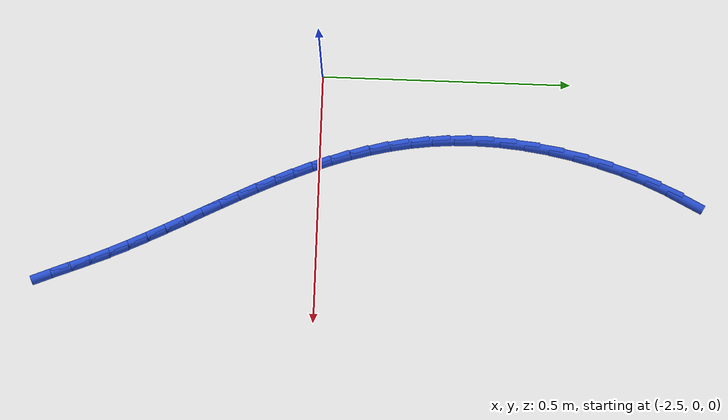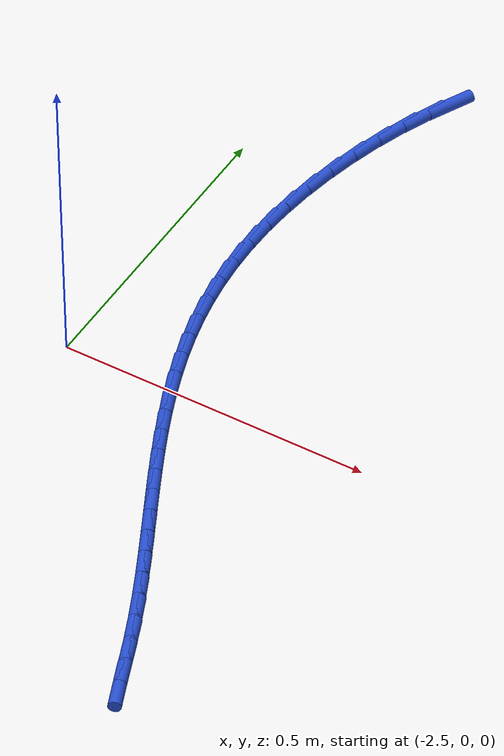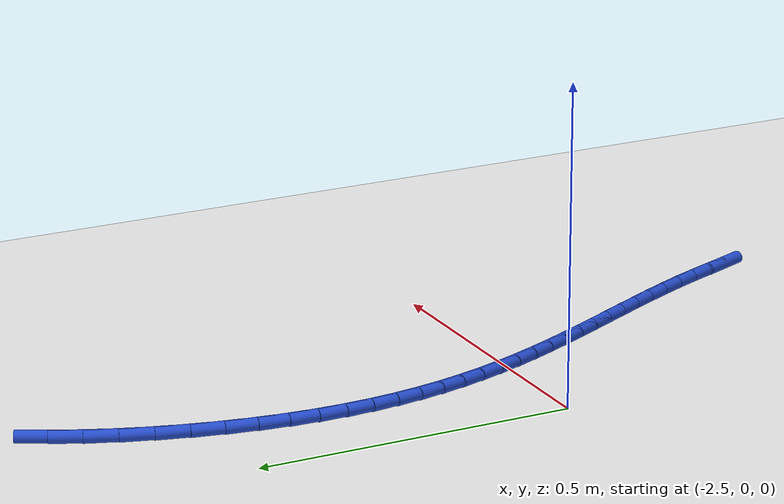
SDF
<sdf version="1.6">
 <world name="default">
  <model name="ground_plane">
   <static>1</static>
   <link name="link">
    <collision name="collision">
     <geometry><plane><normal>0 0 1</normal><size>100 100</size></plane></geometry>
     <surface><friction><ode><mu>100</mu><mu2>50</mu2></ode></friction></surface>
    </collision>
    <visual name="visual">
     <cast_shadows>0</cast_shadows>
     <geometry><plane><normal>0 0 1</normal><size>100 100</size></plane></geometry>
     <material>
      <script><uri>file://media/materials/scripts/gazebo.material</uri><name>Gazebo/WhiteGlow</name></script>
     </material>
    </visual>
   </link>
  </model>
  <model name="line">
   <link name="link_80">
    <pose>-2.2722877918272175 0.7371386330738328 0.01 0 1.57 1.1102548085294446</pose>
    <collision name="collision">
     <geometry><cylinder><radius>0.01</radius><length>0.08</length></cylinder></geometry>
    </collision>
    <visual name="visual">
     <material>
      <script><name>Gazebo/Blue</name><uri>file://media/materials/scripts/gazebo.material</uri></script>
     </material>
     <geometry><cylinder><radius>0.01</radius><length>0.08</length></cylinder></geometry>
    </visual>
   </link>
   <link name="link_81">
    <pose>-2.293808169845945 0.693761565492554 0.01 0 1.57 1.1741731605431436</pose>
    <collision name="collision">
     <geometry><cylinder><radius>0.01</radius><length>0.08</length></cylinder></geometry>
    </collision>
    <visual name="visual">
     <material>
      <script><name>Gazebo/Blue</name><uri>file://media/materials/scripts/gazebo.material</uri></script>
     </material>
     <geometry><cylinder><radius>0.01</radius><length>0.08</length></cylinder></geometry>
    </visual>
   </link>
   <link name="link_82">
    <pose>-2.3131203766269266 0.6476503970834812 0.01 0 1.57 1.2310713354813316</pose>
    <collision name="collision">
     <geometry><cylinder><radius>0.01</radius><length>0.08</length></cylinder></geometry>
    </collision>
    <visual name="visual">
     <material>
      <script><name>Gazebo/Blue</name><uri>file://media/materials/scripts/gazebo.material</uri></script>
     </material>
     <geometry><cylinder><radius>0.01</radius><length>0.08</length></cylinder></geometry>
    </visual>
   </link>
   <link name="link_83">
    <pose>-2.3301203598879447 0.5995500544268834 0.01 0 1.57 1.2834286914795177</pose>
    <collision name="collision">
     <geometry><cylinder><radius>0.01</radius><length>0.08</length></cylinder></geometry>
    </collision>
    <visual name="visual">
     <material>
      <script><name>Gazebo/Blue</name><uri>file://media/materials/scripts/gazebo.material</uri></script>
     </material>
     <geometry><cylinder><radius>0.01</radius><length>0.08</length></cylinder></geometry>
    </visual>
   </link>
   <link name="link_84">
    <pose>-2.344704067346783 0.5502054641030276 0.01 0 1.57 1.3333392832970392</pose>
    <collision name="collision">
     <geometry><cylinder><radius>0.01</radius><length>0.08</length></cylinder></geometry>
    </collision>
    <visual name="visual">
     <material>
      <script><name>Gazebo/Blue</name><uri>file://media/materials/scripts/gazebo.material</uri></script>
     </material>
     <geometry><cylinder><radius>0.01</radius><length>0.08</length></cylinder></geometry>
    </visual>
   </link>
   <link name="link_85">
    <pose>-2.3567674467212245 0.5003615526921839 0.01 0 1.57 1.3827362605781648</pose>
    <collision name="collision">
     <geometry><cylinder><radius>0.01</radius><length>0.08</length></cylinder></geometry>
    </collision>
    <visual name="visual">
     <material>
      <script><name>Gazebo/Blue</name><uri>file://media/materials/scripts/gazebo.material</uri></script>
     </material>
     <geometry><cylinder><radius>0.01</radius><length>0.08</length></cylinder></geometry>
    </visual>
   </link>
   <link name="link_86">
    <pose>-2.3662064457290524 0.45076324677462043 0.01 0 1.57 1.4336068718975705</pose>
    <collision name="collision">
     <geometry><cylinder><radius>0.01</radius><length>0.08</length></cylinder></geometry>
    </collision>
    <visual name="visual">
     <material>
      <script><name>Gazebo/Blue</name><uri>file://media/materials/scripts/gazebo.material</uri></script>
     </material>
     <geometry><cylinder><radius>0.01</radius><length>0.08</length></cylinder></geometry>
    </visual>
   </link>
   <link name="link_87">
    <pose>-2.3729171193971728 0.4021551351416898 0.01 0 1.57 1.487222534233575</pose>
    <collision name="collision">
     <geometry><cylinder><radius>0.01</radius><length>0.08</length></cylinder></geometry>
    </collision>
    <visual name="visual">
     <material>
      <script><name>Gazebo/Blue</name><uri>file://media/materials/scripts/gazebo.material</uri></script>
     </material>
     <geometry><cylinder><radius>0.01</radius><length>0.08</length></cylinder></geometry>
    </visual>
   </link>
   <link name="link_88">
    <pose>-2.376860881603305 0.35507606922903884 0.01 0 1.57 1.5419561604173049</pose>
    <collision name="collision">
     <geometry><cylinder><radius>0.01</radius><length>0.08</length></cylinder></geometry>
    </collision>
    <visual name="visual">
     <material>
      <script><name>Gazebo/Blue</name><uri>file://media/materials/scripts/gazebo.material</uri></script>
     </material>
     <geometry><cylinder><radius>0.01</radius><length>0.08</length></cylinder></geometry>
    </visual>
   </link>
   <link name="link_89">
    <pose>-2.378175374245921 0.30951016784559504 0.01 0 1.57 -1.5448125733403202</pose>
    <collision name="collision">
     <geometry><cylinder><radius>0.01</radius><length>0.08</length></cylinder></geometry>
    </collision>
    <visual name="visual">
     <material>
      <script><name>Gazebo/Blue</name><uri>file://media/materials/scripts/gazebo.material</uri></script>
     </material>
     <geometry><cylinder><radius>0.01</radius><length>0.08</length></cylinder></geometry>
    </visual>
   </link>
   <link name="link_90">
    <pose>-2.377027642848657 0.26534899272477847 0.01 0 1.57 -1.4906483336341698</pose>
    <collision name="collision">
     <geometry><cylinder><radius>0.01</radius><length>0.08</length></cylinder></geometry>
    </collision>
    <visual name="visual">
     <material>
      <script><name>Gazebo/Blue</name><uri>file://media/materials/scripts/gazebo.material</uri></script>
     </material>
     <geometry><cylinder><radius>0.01</radius><length>0.08</length></cylinder></geometry>
    </visual>
   </link>
   <link name="link_91">
    <pose>-2.3735847329351487 0.22248410560000714 0.01 0 1.57 -1.4379122947719953</pose>
    <collision name="collision">
     <geometry><cylinder><radius>0.01</radius><length>0.08</length></cylinder></geometry>
    </collision>
    <visual name="visual">
     <material>
      <script><name>Gazebo/Blue</name><uri>file://media/materials/scripts/gazebo.material</uri></script>
     </material>
     <geometry><cylinder><radius>0.01</radius><length>0.08</length></cylinder></geometry>
    </visual>
   </link>
   <link name="link_92">
    <pose>-2.368013690029032 0.180807068204701 0.01 0 1.57 -1.3873508900185338</pose>
    <collision name="collision">
     <geometry><cylinder><radius>0.01</radius><length>0.08</length></cylinder></geometry>
    </collision>
    <visual name="visual">
     <material>
      <script><name>Gazebo/Blue</name><uri>file://media/materials/scripts/gazebo.material</uri></script>
     </material>
     <geometry><cylinder><radius>0.01</radius><length>0.08</length></cylinder></geometry>
    </visual>
   </link>
   <link name="link_93">
    <pose>-2.360481559653945 0.1402094422722799 0.01 0 1.57 -1.3396517625836968</pose>
    <collision name="collision">
     <geometry><cylinder><radius>0.01</radius><length>0.08</length></cylinder></geometry>
    </collision>
    <visual name="visual">
     <material>
      <script><name>Gazebo/Blue</name><uri>file://media/materials/scripts/gazebo.material</uri></script>
     </material>
     <geometry><cylinder><radius>0.01</radius><length>0.08</length></cylinder></geometry>
    </visual>
   </link>
   <link name="link_94">
    <pose>-2.3511553873335234 0.10058278953616231 0.01 0 1.57 -1.2954158047630357</pose>
    <collision name="collision">
     <geometry><cylinder><radius>0.01</radius><length>0.08</length></cylinder></geometry>
    </collision>
    <visual name="visual">
     <material>
      <script><name>Gazebo/Blue</name><uri>file://media/materials/scripts/gazebo.material</uri></script>
     </material>
     <geometry><cylinder><radius>0.01</radius><length>0.08</length></cylinder></geometry>
    </visual>
   </link>
   <link name="link_95">
    <pose>-2.3402022185914038 0.06181867172976796 0.01 0 1.57 -1.2551406259230973</pose>
    <collision name="collision">
     <geometry><cylinder><radius>0.01</radius><length>0.08</length></cylinder></geometry>
    </collision>
    <visual name="visual">
     <material>
      <script><name>Gazebo/Blue</name><uri>file://media/materials/scripts/gazebo.material</uri></script>
     </material>
     <geometry><cylinder><radius>0.01</radius><length>0.08</length></cylinder></geometry>
    </visual>
   </link>
   <link name="link_96">
    <pose>-2.3277890989512224 0.023808650586516163 0.01 0 1.57 -1.2192156826618652</pose>
    <collision name="collision">
     <geometry><cylinder><radius>0.01</radius><length>0.08</length></cylinder></geometry>
    </collision>
    <visual name="visual">
     <material>
      <script><name>Gazebo/Blue</name><uri>file://media/materials/scripts/gazebo.material</uri></script>
     </material>
     <geometry><cylinder><radius>0.01</radius><length>0.08</length></cylinder></geometry>
    </visual>
   </link>
   <link name="link_97">
    <pose>-2.314083073936617 -0.013555712160173691 0.01 0 1.57 -1.1879272772056426</pose>
    <collision name="collision">
     <geometry><cylinder><radius>0.01</radius><length>0.08</length></cylinder></geometry>
    </collision>
    <visual name="visual">
     <material>
      <script><name>Gazebo/Blue</name><uri>file://media/materials/scripts/gazebo.material</uri></script>
     </material>
     <geometry><cylinder><radius>0.01</radius><length>0.08</length></cylinder></geometry>
    </visual>
   </link>
   <link name="link_98">
    <pose>-2.2992511890712235 -0.05038285477688148 0.01 0 1.57 -1.1614704640422762</pose>
    <collision name="collision">
     <geometry><cylinder><radius>0.01</radius><length>0.08</length></cylinder></geometry>
    </collision>
    <visual name="visual">
     <material>
      <script><name>Gazebo/Blue</name><uri>file://media/materials/scripts/gazebo.material</uri></script>
     </material>
     <geometry><cylinder><radius>0.01</radius><length>0.08</length></cylinder></geometry>
    </visual>
   </link>
   <link name="link_99">
    <pose>-2.283460489878676 -0.0867812155301895 0.01 0 1.57 -1.1399646356827156</pose>
    <collision name="collision">
     <geometry><cylinder><radius>0.01</radius><length>0.08</length></cylinder></geometry>
    </collision>
    <visual name="visual">
     <material>
      <script><name>Gazebo/Blue</name><uri>file://media/materials/scripts/gazebo.material</uri></script>
     </material>
     <geometry><cylinder><radius>0.01</radius><length>0.08</length></cylinder></geometry>
    </visual>
   </link>
   <link name="link_100">
    <pose>-2.2668780218826146 -0.12285923268667752 0.01 0 1.57 -1.123469944644761</pose>
    <collision name="collision">
     <geometry><cylinder><radius>0.01</radius><length>0.08</length></cylinder></geometry>
    </collision>
    <visual name="visual">
     <material>
      <script><name>Gazebo/Blue</name><uri>file://media/materials/scripts/gazebo.material</uri></script>
     </material>
     <geometry><cylinder><radius>0.01</radius><length>0.08</length></cylinder></geometry>
    </visual>
   </link>
   <link name="link_101">
    <pose>-2.2496708306066737 -0.15872534451292636 0.01 0 1.57 -1.1120024292985282</pose>
    <collision name="collision">
     <geometry><cylinder><radius>0.01</radius><length>0.08</length></cylinder></geometry>
    </collision>
    <visual name="visual">
     <material>
      <script><name>Gazebo/Blue</name><uri>file://media/materials/scripts/gazebo.material</uri></script>
     </material>
     <geometry><cylinder><radius>0.01</radius><length>0.08</length></cylinder></geometry>
    </visual>
   </link>
   <link name="link_102">
    <pose>-2.2320059615744907 -0.19448798927551658 0.01 0 1.57 -1.1055464687539351</pose>
    <collision name="collision">
     <geometry><cylinder><radius>0.01</radius><length>0.08</length></cylinder></geometry>
    </collision>
    <visual name="visual">
     <material>
      <script><name>Gazebo/Blue</name><uri>file://media/materials/scripts/gazebo.material</uri></script>
     </material>
     <geometry><cylinder><radius>0.01</radius><length>0.08</length></cylinder></geometry>
    </visual>
   </link>
   <link name="link_103">
    <pose>-2.2140504603097013 -0.2302556052410288 0.01 0 1.57 -1.1040638322182814</pose>
    <collision name="collision">
     <geometry><cylinder><radius>0.01</radius><length>0.08</length></cylinder></geometry>
    </collision>
    <visual name="visual">
     <material>
      <script><name>Gazebo/Blue</name><uri>file://media/materials/scripts/gazebo.material</uri></script>
     </material>
     <geometry><cylinder><radius>0.01</radius><length>0.08</length></cylinder></geometry>
    </visual>
   </link>
   <link name="link_104">
    <pose>-2.195971372335942 -0.26613663067604365 0.01 0 1.57 -1.1074990543381098</pose>
    <collision name="collision">
     <geometry><cylinder><radius>0.01</radius><length>0.08</length></cylinder></geometry>
    </collision>
    <visual name="visual">
     <material>
      <script><name>Gazebo/Blue</name><uri>file://media/materials/scripts/gazebo.material</uri></script>
     </material>
     <geometry><cylinder><radius>0.01</radius><length>0.08</length></cylinder></geometry>
    </visual>
   </link>
   <link name="link_105">
    <pose>-2.1779357431768505 -0.3022395038471412 0.01 0 1.57 -1.1157811759118723</pose>
    <collision name="collision">
     <geometry><cylinder><radius>0.01</radius><length>0.08</length></cylinder></geometry>
    </collision>
    <visual name="visual">
     <material>
      <script><name>Gazebo/Blue</name><uri>file://media/materials/scripts/gazebo.material</uri></script>
     </material>
     <geometry><cylinder><radius>0.01</radius><length>0.08</length></cylinder></geometry>
    </visual>
   </link>
   <link name="link_106">
    <pose>-2.1601106183560628 -0.3386726630209036 0.01 0 1.57 -1.1288220911858615</pose>
    <collision name="collision">
     <geometry><cylinder><radius>0.01</radius><length>0.08</length></cylinder></geometry>
    </collision>
    <visual name="visual">
     <material>
      <script><name>Gazebo/Blue</name><uri>file://media/materials/scripts/gazebo.material</uri></script>
     </material>
     <geometry><cylinder><radius>0.01</radius><length>0.08</length></cylinder></geometry>
    </visual>
   </link>
   <link name="link_107">
    <pose>-2.142663043397214 -0.37554454646391056 0.01 0 1.57 -1.1465119001496962</pose>
    <collision name="collision">
     <geometry><cylinder><radius>0.01</radius><length>0.08</length></cylinder></geometry>
    </collision>
    <visual name="visual">
     <material>
      <script><name>Gazebo/Blue</name><uri>file://media/materials/scripts/gazebo.material</uri></script>
     </material>
     <geometry><cylinder><radius>0.01</radius><length>0.08</length></cylinder></geometry>
    </visual>
   </link>
   <link name="link_108">
    <pose>-2.1257600638239422 -0.412963592442743 0.01 0 1.57 -1.1687118304973825</pose>
    <collision name="collision">
     <geometry><cylinder><radius>0.01</radius><length>0.08</length></cylinder></geometry>
    </collision>
    <visual name="visual">
     <material>
      <script><name>Gazebo/Blue</name><uri>file://media/materials/scripts/gazebo.material</uri></script>
     </material>
     <geometry><cylinder><radius>0.01</radius><length>0.08</length></cylinder></geometry>
    </visual>
   </link>
   <link name="link_109">
    <pose>-2.1095687251598836 -0.45103823922398145 0.01 0 1.57 -1.1914739550951001</pose>
    <collision name="collision">
     <geometry><cylinder><radius>0.01</radius><length>0.08</length></cylinder></geometry>
    </collision>
    <visual name="visual">
     <material>
      <script><name>Gazebo/Blue</name><uri>file://media/materials/scripts/gazebo.material</uri></script>
     </material>
     <geometry><cylinder><radius>0.01</radius><length>0.08</length></cylinder></geometry>
    </visual>
   </link>
   <link name="link_110">
    <pose>-2.0941287965319977 -0.4897709912850884 0.01 0 1.57 -1.198898922587809</pose>
    <collision name="collision">
     <geometry><cylinder><radius>0.01</radius><length>0.08</length></cylinder></geometry>
    </collision>
    <visual name="visual">
     <material>
      <script><name>Gazebo/Blue</name><uri>file://media/materials/scripts/gazebo.material</uri></script>
     </material>
     <geometry><cylinder><radius>0.01</radius><length>0.08</length></cylinder></geometry>
    </visual>
   </link>
   <link name="link_111">
    <pose>-2.0789391177935674 -0.5287141306812887 0.01 0 1.57 -1.1869481613505968</pose>
    <collision name="collision">
     <geometry><cylinder><radius>0.01</radius><length>0.08</length></cylinder></geometry>
    </collision>
    <visual name="visual">
     <material>
      <script><name>Gazebo/Blue</name><uri>file://media/materials/scripts/gazebo.material</uri></script>
     </material>
     <geometry><cylinder><radius>0.01</radius><length>0.08</length></cylinder></geometry>
    </visual>
   </link>
  </model>
 </world>
</sdf>
